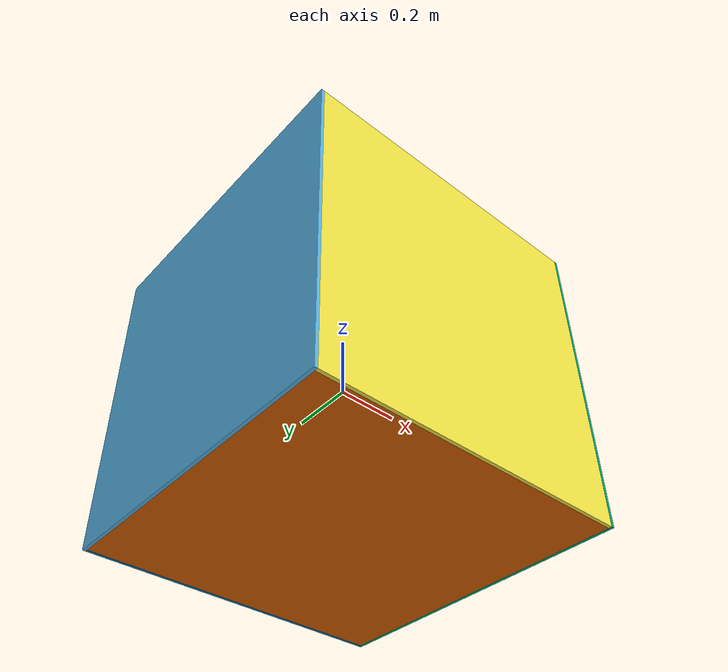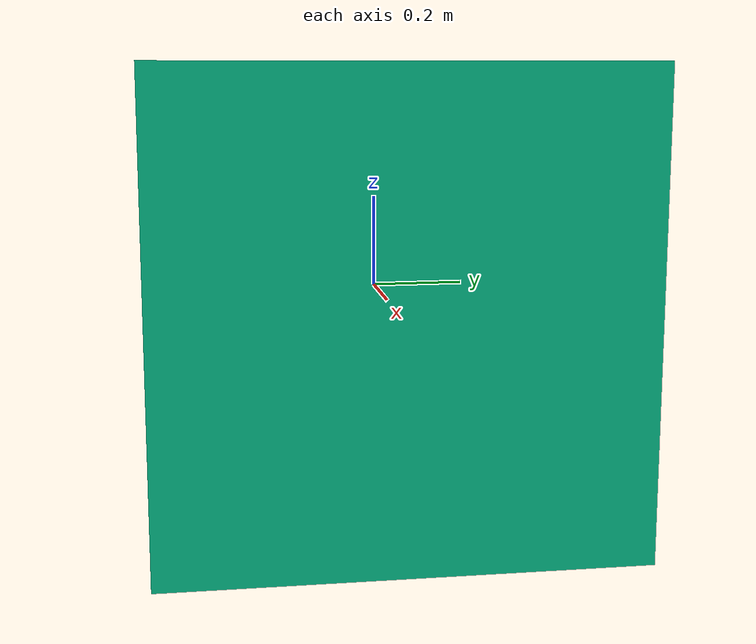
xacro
<?xml version="1.0"?>
<robot name="hollow_cube" xmlns:xacro="http://ros.org/wiki/xacro">

  <xacro:property name="length" value="1.0"/>
  <xacro:property name="width" value="1.0"/>
  <xacro:property name="height" value="1.0"/>
  <xacro:property name="thickness" value="0.01"/>

  <xacro:macro name="cube" params="prefix x y z l w h">
    <link name="${prefix}">
      <inertial>
        <pose>0 0 0.1016 0 0 0</pose>
        <!-- volume about 0.0085 m^3, density 2000 kg/m^3 -->
        <mass value="0.1"></mass>
        <!-- approximate as uniform box 0.37 x 0.17 x 0.20 m -->
        <inertia
          ixx="0.0001"
          ixy="0.0000"
          iyy="0.0001"
          ixz="0.0000"
          iyz="0.0000"
          izz="0.0001">
        </inertia>
      </inertial>
      <visual name="${prefix}_visual">
        <origin xyz="${x} ${y} ${z}" rpy="0 0 0"/>
        <geometry>
          <box size="${l} ${w} ${h}"/>
        </geometry>
      </visual>
      <collision name="${prefix}_collision">
        <origin xyz="${x} ${y} ${z}" rpy="0 0 0"/>
        <geometry>
          <box size="${l} ${w} ${h}"/>
        </geometry>
        <surface>
          <contact>
            <ode>
              <max_vel>0.1</max_vel>
              <min_depth>0.001</min_depth>
            </ode>
          </contact>
          <friction>
            <ode>
              <mu>1.0</mu>
              <mu2>1.0</mu2>
            </ode>
          </friction>
        </surface>
      </collision>
    </link>
    <joint name="${prefix}-base" type="fixed">
      <parent link="base"/>
      <child link="${prefix}"/>
    </joint>
  </xacro:macro>

  <link name="base"/>

  <xacro:macro name="box">
      <xacro:cube prefix="left" x="-${-thickness/2 + width/2}" y="0" z="0" l="${thickness}" w="${width}" h="${height}"/>
      <xacro:cube prefix="right" x="${-thickness/2 + width/2}" y="0" z="0" l="${thickness}" w="${width}" h="${height}"/>
      <xacro:cube prefix="front" x="0" y="-${-thickness/2 + length/2}" z="0" l="${length - 2*thickness}" w="${thickness}" h="${height}"/>
      <xacro:cube prefix="back" x="0" y="${-thickness/2 + length/2}" z="0" l="${length - 2*thickness}" w="${thickness}" h="${height}"/>
      <xacro:cube prefix="bottom" x="0" y="0" z="-${-thickness/2 + height/2}" l="${length - 2*thickness}" w="${width - 2*thickness}" h="${thickness}"/>
  </xacro:macro>

  <xacro:box/>

</robot>
